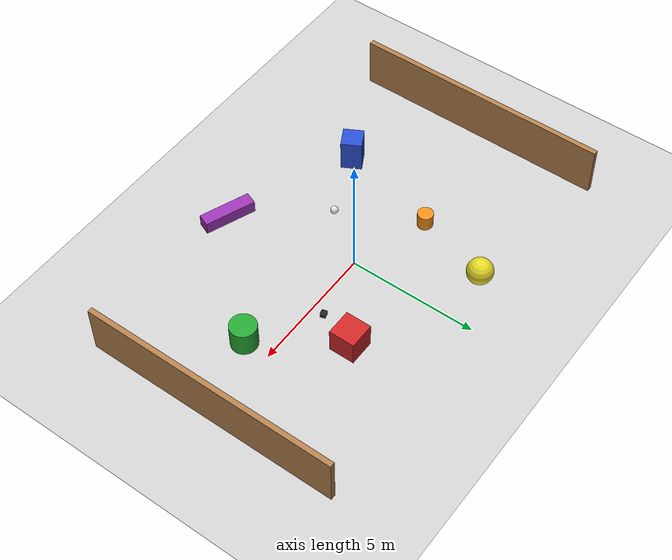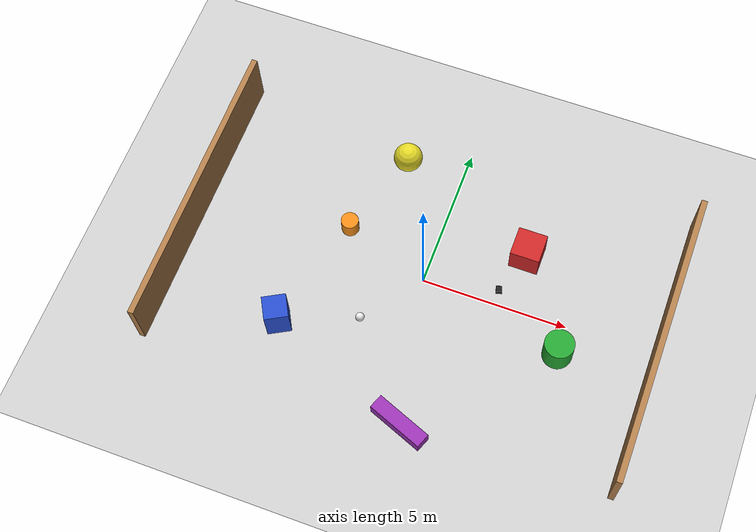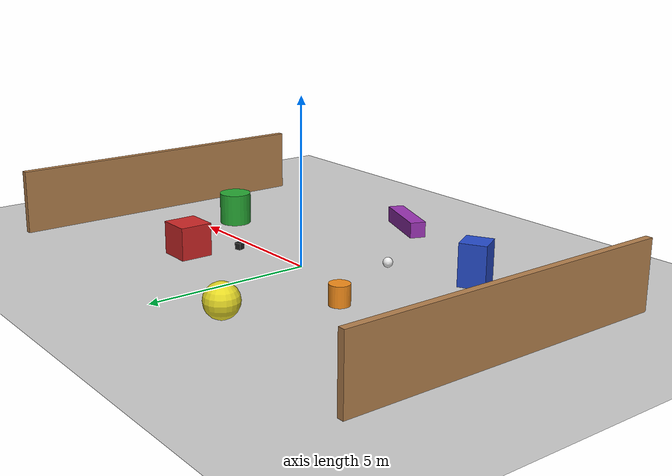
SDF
<?xml version="1.0" ?>
<sdf version="1.6">
  <world name="random_objects_world">
    <!-- 添加物理引擎参数 -->
    <physics type="ode">
      <max_step_size>0.001</max_step_size>
      <real_time_factor>1</real_time_factor>
      <real_time_update_rate>1000</real_time_update_rate>
    </physics>

    <!-- 添加光照 -->
    <light type="directional" name="sun">
      <cast_shadows>true</cast_shadows>
      <pose>0 0 10 0 0 0</pose>
      <diffuse>0.8 0.8 0.8 1</diffuse>
      <specular>0.2 0.2 0.2 1</specular>
      <attenuation>
        <range>1000</range>
        <constant>0.9</constant>
        <linear>0.01</linear>
        <quadratic>0.001</quadratic>
      </attenuation>
      <direction>-0.5 0.1 -0.9</direction>
    </light>

    <!-- 添加地面平面 -->
    <model name="ground_plane">
      <static>true</static>
      <link name="link">
        <collision name="collision">
          <geometry>
            <plane>
              <normal>0 0 1</normal>
              <size>100 100</size>
            </plane>
          </geometry>
        </collision>
        <visual name="visual">
          <geometry>
            <plane>
              <normal>0 0 1</normal>
              <size>100 100</size>
            </plane>
          </geometry>
          <material>
            <script>
              <uri>file://media/materials/scripts/gazebo.material</uri>
              <name>Gazebo/Grey</name>
            </script>
          </material>
        </visual>
      </link>
    </model>

    <!-- 随机摆放的盒子 -->
    <model name="box_1">
      <pose>3 2 0.5 0 0 0</pose>
      <static>false</static>
      <link name="link">
        <collision name="collision">
          <geometry>
            <box>
              <size>1 1 1</size>
            </box>
          </geometry>
        </collision>
        <visual name="visual">
          <geometry>
            <box>
              <size>1 1 1</size>
            </box>
          </geometry>
          <material>
            <script>
              <uri>file://media/materials/scripts/gazebo.material</uri>
              <name>Gazebo/Red</name>
            </script>
          </material>
        </visual>
        <inertial>
          <mass>1.0</mass>
          <inertia>
            <ixx>0.166667</ixx>
            <ixy>0.0</ixy>
            <ixz>0.0</ixz>
            <iyy>0.166667</iyy>
            <iyz>0.0</iyz>
            <izz>0.166667</izz>
          </inertia>
        </inertial>
      </link>
    </model>

    <model name="box_2">
      <pose>-4 -3 0.5 0 0 0.5</pose>
      <static>false</static>
      <link name="link">
        <collision name="collision">
          <geometry>
            <box>
              <size>0.8 0.8 1.5</size>
            </box>
          </geometry>
        </collision>
        <visual name="visual">
          <geometry>
            <box>
              <size>0.8 0.8 1.5</size>
            </box>
          </geometry>
          <material>
            <script>
              <uri>file://media/materials/scripts/gazebo.material</uri>
              <name>Gazebo/Blue</name>
            </script>
          </material>
        </visual>
        <inertial>
          <mass>1.0</mass>
          <inertia>
            <ixx>0.2</ixx>
            <ixy>0.0</ixy>
            <ixz>0.0</ixz>
            <iyy>0.2</iyy>
            <iyz>0.0</iyz>
            <izz>0.133</izz>
          </inertia>
        </inertial>
      </link>
    </model>

    <!-- 圆柱体 -->
    <model name="cylinder_1">
      <pose>5 -1 0.5 0 0 0</pose>
      <static>false</static>
      <link name="link">
        <collision name="collision">
          <geometry>
            <cylinder>
              <radius>0.5</radius>
              <length>1.0</length>
            </cylinder>
          </geometry>
        </collision>
        <visual name="visual">
          <geometry>
            <cylinder>
              <radius>0.5</radius>
              <length>1.0</length>
            </cylinder>
          </geometry>
          <material>
            <script>
              <uri>file://media/materials/scripts/gazebo.material</uri>
              <name>Gazebo/Green</name>
            </script>
          </material>
        </visual>
        <inertial>
          <mass>1.0</mass>
          <inertia>
            <ixx>0.145833</ixx>
            <ixy>0.0</ixy>
            <ixz>0.0</ixz>
            <iyy>0.145833</iyy>
            <iyz>0.0</iyz>
            <izz>0.125</izz>
          </inertia>
        </inertial>
      </link>
    </model>

    <!-- 球体 -->
    <model name="sphere_1">
      <pose>-2 4 0.5 0 0 0</pose>
      <static>false</static>
      <link name="link">
        <collision name="collision">
          <geometry>
            <sphere>
              <radius>0.5</radius>
            </sphere>
          </geometry>
        </collision>
        <visual name="visual">
          <geometry>
            <sphere>
              <radius>0.5</radius>
            </sphere>
          </geometry>
          <material>
            <script>
              <uri>file://media/materials/scripts/gazebo.material</uri>
              <name>Gazebo/Yellow</name>
            </script>
          </material>
        </visual>
        <inertial>
          <mass>1.0</mass>
          <inertia>
            <ixx>0.1</ixx>
            <ixy>0.0</ixy>
            <ixz>0.0</ixz>
            <iyy>0.1</iyy>
            <iyz>0.0</iyz>
            <izz>0.1</izz>
          </inertia>
        </inertial>
      </link>
    </model>

    <!-- 墙壁 - 为激光雷达提供反射面 -->
    <model name="wall_1">
      <pose>8 0 1 0 0 0</pose>
      <static>true</static>
      <link name="link">
        <collision name="collision">
          <geometry>
            <box>
              <size>0.2 10 2</size>
            </box>
          </geometry>
        </collision>
        <visual name="visual">
          <geometry>
            <box>
              <size>0.2 10 2</size>
            </box>
          </geometry>
          <material>
            <script>
              <uri>file://media/materials/scripts/gazebo.material</uri>
              <name>Gazebo/Wood</name>
            </script>
          </material>
        </visual>
      </link>
    </model>

    <model name="wall_2">
      <pose>-8 0 1 0 0 0</pose>
      <static>true</static>
      <link name="link">
        <collision name="collision">
          <geometry>
            <box>
              <size>0.2 10 2</size>
            </box>
          </geometry>
        </collision>
        <visual name="visual">
          <geometry>
            <box>
              <size>0.2 10 2</size>
            </box>
          </geometry>
          <material>
            <script>
              <uri>file://media/materials/scripts/gazebo.material</uri>
              <name>Gazebo/Wood</name>
            </script>
          </material>
        </visual>
      </link>
    </model>

    <!-- 更多随机物体 -->
    <model name="box_3">
      <pose>1 -5 0.25 0 0 1.2</pose>
      <static>false</static>
      <link name="link">
        <collision name="collision">
          <geometry>
            <box>
              <size>0.5 2 0.5</size>
            </box>
          </geometry>
        </collision>
        <visual name="visual">
          <geometry>
            <box>
              <size>0.5 2 0.5</size>
            </box>
          </geometry>
          <material>
            <script>
              <uri>file://media/materials/scripts/gazebo.material</uri>
              <name>Gazebo/Purple</name>
            </script>
          </material>
        </visual>
        <inertial>
          <mass>0.5</mass>
          <inertia>
            <ixx>0.175</ixx>
            <ixy>0.0</ixy>
            <ixz>0.0</ixz>
            <iyy>0.02</iyy>
            <iyz>0.0</iyz>
            <izz>0.175</izz>
          </inertia>
        </inertial>
      </link>
    </model>

    <model name="cylinder_2">
      <pose>-3 1 0.3 0 0 0</pose>
      <static>false</static>
      <link name="link">
        <collision name="collision">
          <geometry>
            <cylinder>
              <radius>0.3</radius>
              <length>0.6</length>
            </cylinder>
          </geometry>
        </collision>
        <visual name="visual">
          <geometry>
            <cylinder>
              <radius>0.3</radius>
              <length>0.6</length>
            </cylinder>
          </geometry>
          <material>
            <script>
              <uri>file://media/materials/scripts/gazebo.material</uri>
              <name>Gazebo/Orange</name>
            </script>
          </material>
        </visual>
        <inertial>
          <mass>0.8</mass>
          <inertia>
            <ixx>0.048</ixx>
            <ixy>0.0</ixy>
            <ixz>0.0</ixz>
            <iyy>0.048</iyy>
            <iyz>0.0</iyz>
            <izz>0.036</izz>
          </inertia>
        </inertial>
      </link>
    </model>

    <!-- 小型障碍物 -->
    <model name="small_box_1">
      <pose>2.5 0.5 0.1 0 0 0.3</pose>
      <static>false</static>
      <link name="link">
        <collision name="collision">
          <geometry>
            <box>
              <size>0.2 0.2 0.2</size>
            </box>
          </geometry>
        </collision>
        <visual name="visual">
          <geometry>
            <box>
              <size>0.2 0.2 0.2</size>
            </box>
          </geometry>
          <material>
            <script>
              <uri>file://media/materials/scripts/gazebo.material</uri>
              <name>Gazebo/Black</name>
            </script>
          </material>
        </visual>
        <inertial>
          <mass>0.1</mass>
          <inertia>
            <ixx>0.00067</ixx>
            <ixy>0.0</ixy>
            <ixz>0.0</ixz>
            <iyy>0.00067</iyy>
            <iyz>0.0</iyz>
            <izz>0.00067</izz>
          </inertia>
        </inertial>
      </link>
    </model>

    <model name="small_sphere_1">
      <pose>-1.5 -2 0.15 0 0 0</pose>
      <static>false</static>
      <link name="link">
        <collision name="collision">
          <geometry>
            <sphere>
              <radius>0.15</radius>
            </sphere>
          </geometry>
        </collision>
        <visual name="visual">
          <geometry>
            <sphere>
              <radius>0.15</radius>
            </sphere>
          </geometry>
          <material>
            <script>
              <uri>file://media/materials/scripts/gazebo.material</uri>
              <name>Gazebo/White</name>
            </script>
          </material>
        </visual>
        <inertial>
          <mass>0.2</mass>
          <inertia>
            <ixx>0.0018</ixx>
            <ixy>0.0</ixy>
            <ixz>0.0</ixz>
            <iyy>0.0018</iyy>
            <iyz>0.0</iyz>
            <izz>0.0018</izz>
          </inertia>
        </inertial>
      </link>
    </model>

  </world>
</sdf>
